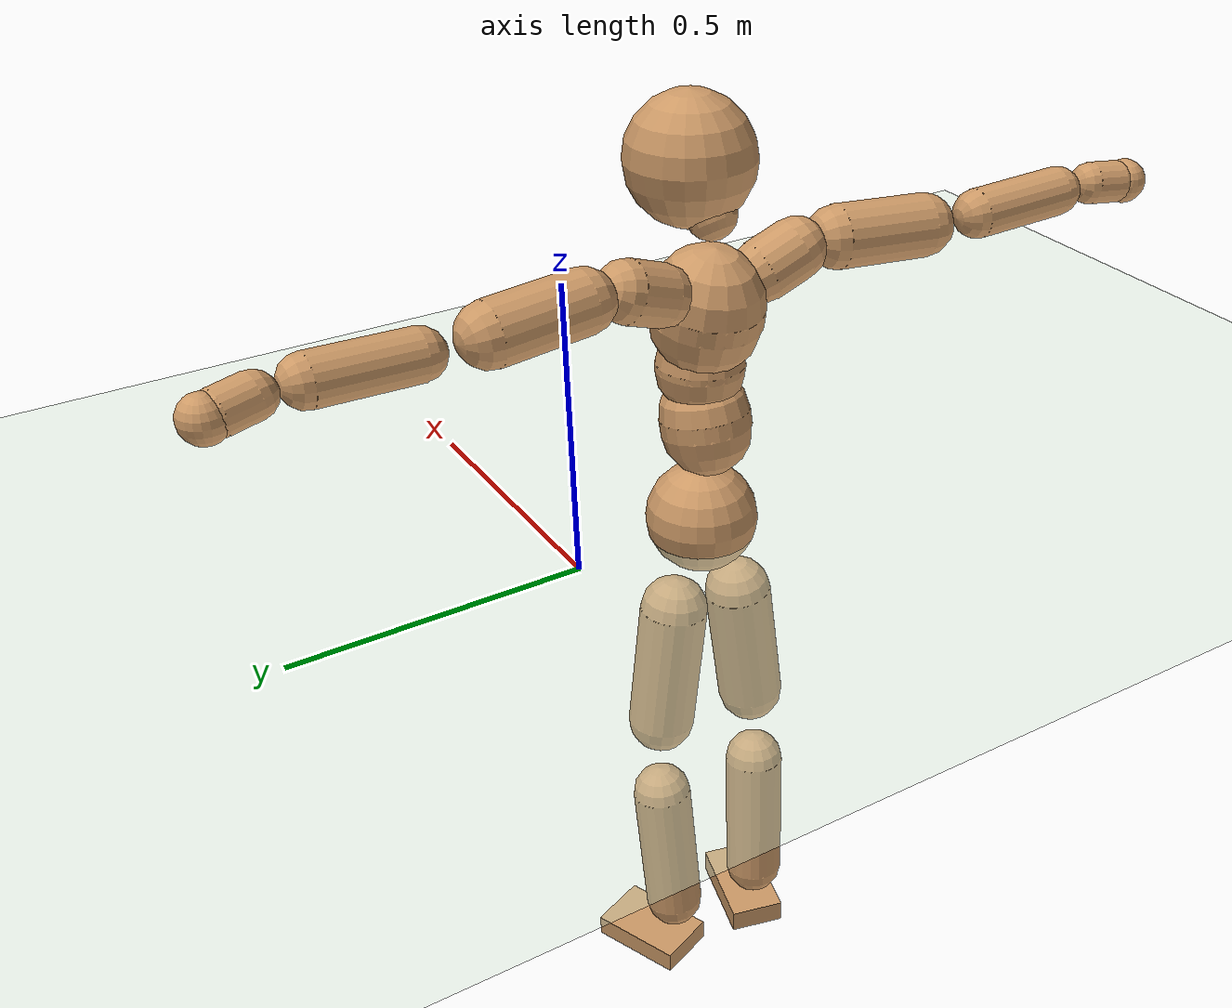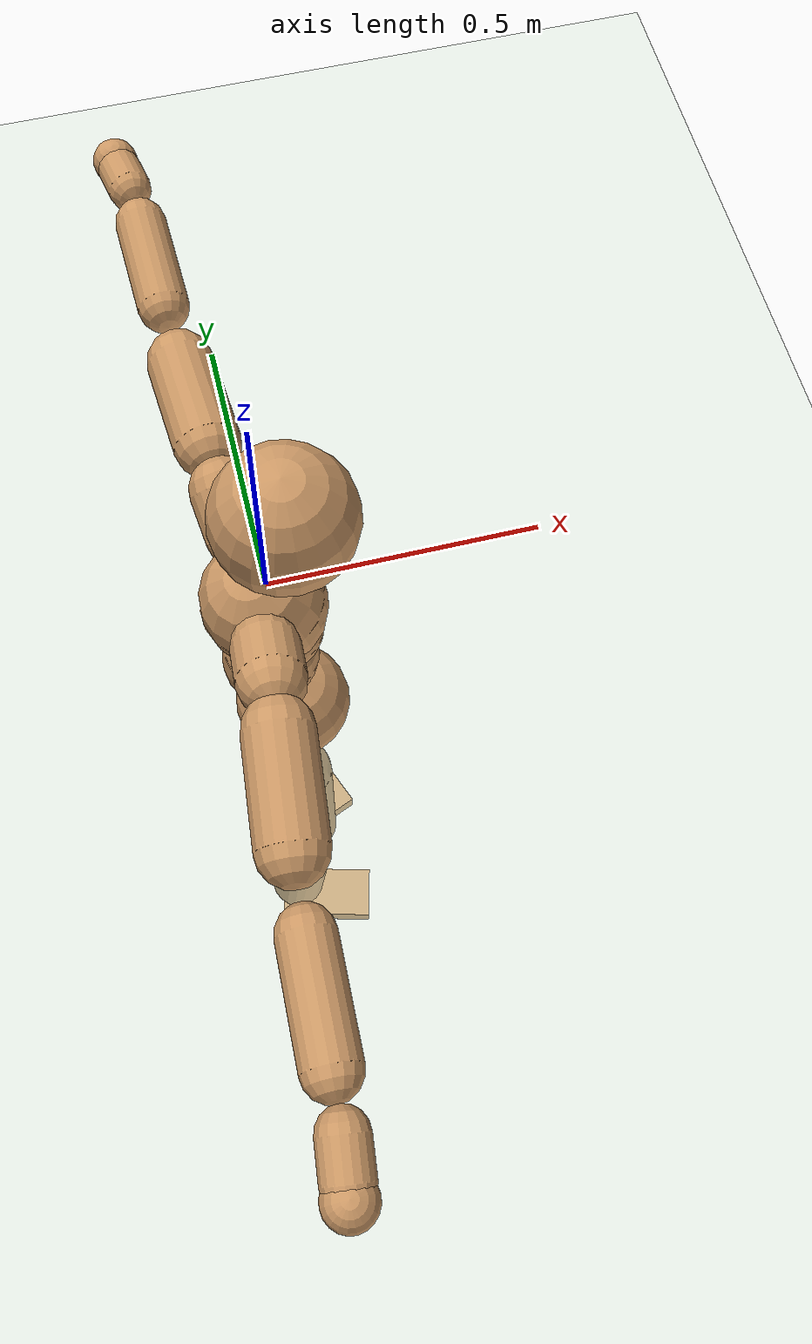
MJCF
<mujoco model="humanoid">
  <compiler coordinate="local"/>
  <default>
    <joint damping="0.0" armature="0.01" stiffness="0.0" limited="true"/>
    <geom conaffinity="1" condim="3" contype="7" margin="0.001" rgba="0.8 0.6 .4 1"/>
  </default>
  <asset>
    <texture type="skybox" builtin="gradient" rgb1=".4 .5 .6" rgb2="0 0 0" width="100" height="100"/>
    <texture builtin="flat" height="1278" mark="cross" markrgb="1 1 1" name="texgeom" random="0.01" rgb1="0.8 0.6 0.4" rgb2="0.8 0.6 0.4" type="cube" width="127"/>
    <texture builtin="checker" height="100" name="texplane" rgb1="0 0 0" rgb2="0.8 0.8 0.8" type="2d" width="100"/>
    <material name="MatPlane" reflectance="0.5" shininess="1" specular="1" texrepeat="60 60" texture="texplane"/>
    <material name="geom" texture="texgeom" texuniform="true"/>
  </asset>
  <worldbody>
    <light cutoff="100" diffuse="1 1 1" dir="-0 0 -1.3" directional="true" exponent="1" pos="0 0 1.3" specular=".1 .1 .1"/>
    <geom conaffinity="1" condim="3" name="floor" pos="0 0 0" rgba="0.8 0.9 0.8 1" size="100 100 .2" type="plane" material="MatPlane"/>
    <body name="Pelvis" pos="-0.0019 -0.2349 0.0288">
      <freejoint name="Pelvis"/>
      <geom type="sphere" contype="1" conaffinity="1" density="500" size="0.0957" pos="0.0000 0.0000 0.0000" name="Pelvis"/>
      <body name="L_Hip" pos="-0.0151 0.0567 -0.0817">
        <joint name="L_Hip_x" type="hinge" pos="0 0 0" axis="1 0 0" stiffness="800" damping="80" armature="0.02" range="-180.0000 180.0000"/>
        <joint name="L_Hip_y" type="hinge" pos="0 0 0" axis="0 1 0" stiffness="800" damping="80" armature="0.02" range="-180.0000 180.0000"/>
        <joint name="L_Hip_z" type="hinge" pos="0 0 0" axis="0 0 1" stiffness="800" damping="80" armature="0.02" range="-180.0000 180.0000"/>
        <geom type="capsule" contype="1" conaffinity="1" density="500" fromto="0.0023 0.0090 -0.0790 0.0092 0.0361 -0.3161" size="0.0587" name="L_Hip"/>
        <body name="L_Knee" pos="0.0115 0.0451 -0.3952">
          <joint name="L_Knee_x" type="hinge" pos="0 0 0" axis="1 0 0" stiffness="800" damping="80" armature="0.02" range="-180.0000 180.0000"/>
          <joint name="L_Knee_y" type="hinge" pos="0 0 0" axis="0 1 0" stiffness="800" damping="80" armature="0.02" range="-180.0000 180.0000"/>
          <joint name="L_Knee_z" type="hinge" pos="0 0 0" axis="0 0 1" stiffness="800" damping="80" armature="0.02" range="-180.0000 180.0000"/>
          <geom type="capsule" contype="1" conaffinity="1" density="500" fromto="-0.0071 -0.0029 -0.0877 -0.0284 -0.0114 -0.3507" size="0.0525" name="L_Knee"/>
          <body name="L_Ankle" pos="-0.0355 -0.0143 -0.4384">
            <joint name="L_Ankle_x" type="hinge" pos="0 0 0" axis="1 0 0" stiffness="800" damping="80" armature="0.02" range="-180.0000 180.0000"/>
            <joint name="L_Ankle_y" type="hinge" pos="0 0 0" axis="0 1 0" stiffness="800" damping="80" armature="0.02" range="-180.0000 180.0000"/>
            <joint name="L_Ankle_z" type="hinge" pos="0 0 0" axis="0 0 1" stiffness="800" damping="80" armature="0.02" range="-180.0000 180.0000"/>
            <geom type="box" contype="1" conaffinity="1" density="500" pos="0.0610 0.0245 -0.0311" size="0.0877 0.0553 0.0208" quat="0.9818 0.0000 0.0000 0.1898" name="L_Ankle"/>
            <body name="L_Toe" pos="0.122 0.049 -0.0622">
              <joint name="L_Toe_x" type="hinge" pos="0 0 0" axis="1 0 0" stiffness="500" damping="50" armature="0.02" range="-180.0000 180.0000"/>
              <joint name="L_Toe_y" type="hinge" pos="0 0 0" axis="0 1 0" stiffness="500" damping="50" armature="0.02" range="-180.0000 180.0000"/>
              <joint name="L_Toe_z" type="hinge" pos="0 0 0" axis="0 0 1" stiffness="500" damping="50" armature="0.02" range="-180.0000 180.0000"/>
              <geom type="box" contype="1" conaffinity="1" density="500" pos="0.0000 0.0000 0.0320" size="0.0011 0.0026 0.0011" quat="0.9810 0.0000 0.0000 0.1939" name="L_Toe"/>
            </body>
          </body>
        </body>
      </body>
      <body name="R_Hip" pos="-0.0103 -0.0575 -0.0909">
        <joint name="R_Hip_x" type="hinge" pos="0 0 0" axis="1 0 0" stiffness="800" damping="80" armature="0.02" range="-180.0000 180.0000"/>
        <joint name="R_Hip_y" type="hinge" pos="0 0 0" axis="0 1 0" stiffness="800" damping="80" armature="0.02" range="-180.0000 180.0000"/>
        <joint name="R_Hip_z" type="hinge" pos="0 0 0" axis="0 0 1" stiffness="800" damping="80" armature="0.02" range="-180.0000 180.0000"/>
        <geom type="capsule" contype="1" conaffinity="1" density="500" fromto="-0.0005 -0.0093 -0.0779 -0.0021 -0.0371 -0.3115" size="0.0582" name="R_Hip"/>
        <body name="R_Knee" pos="-0.0026 -0.0463 -0.3894">
          <joint name="R_Knee_x" type="hinge" pos="0 0 0" axis="1 0 0" stiffness="800" damping="80" armature="0.02" range="-180.0000 180.0000"/>
          <joint name="R_Knee_y" type="hinge" pos="0 0 0" axis="0 1 0" stiffness="800" damping="80" armature="0.02" range="-180.0000 180.0000"/>
          <joint name="R_Knee_z" type="hinge" pos="0 0 0" axis="0 0 1" stiffness="800" damping="80" armature="0.02" range="-180.0000 180.0000"/>
          <geom type="capsule" contype="1" conaffinity="1" density="500" fromto="-0.0068 0.0036 -0.0860 -0.0270 0.0143 -0.3439" size="0.0533" name="R_Knee"/>
          <body name="R_Ankle" pos="-0.0338 0.0178 -0.4299">
            <joint name="R_Ankle_x" type="hinge" pos="0 0 0" axis="1 0 0" stiffness="800" damping="80" armature="0.02" range="-180.0000 180.0000"/>
            <joint name="R_Ankle_y" type="hinge" pos="0 0 0" axis="0 1 0" stiffness="800" damping="80" armature="0.02" range="-180.0000 180.0000"/>
            <joint name="R_Ankle_z" type="hinge" pos="0 0 0" axis="0 0 1" stiffness="800" damping="80" armature="0.02" range="-180.0000 180.0000"/>
            <geom type="box" contype="1" conaffinity="1" density="500" pos="0.0659 -0.0167 -0.0315" size="0.0934 0.0505 0.022" quat="0.9923 0.0000 0.0000 -0.1241" name="R_Ankle"/>
            <body name="R_Toe" pos="0.1318 -0.0335 -0.0629">
              <joint name="R_Toe_x" type="hinge" pos="0 0 0" axis="1 0 0" stiffness="500" damping="50" armature="0.02" range="-180.0000 180.0000"/>
              <joint name="R_Toe_y" type="hinge" pos="0 0 0" axis="0 1 0" stiffness="500" damping="50" armature="0.02" range="-180.0000 180.0000"/>
              <joint name="R_Toe_z" type="hinge" pos="0 0 0" axis="0 0 1" stiffness="500" damping="50" armature="0.02" range="-180.0000 180.0000"/>
              <geom type="box" contype="1" conaffinity="1" density="500" pos="0.0000 0.0000 0.0322" size="0.001 0.0025 0.0011" quat="0.9933 0.0000 0.0000 -0.1153" name="R_Toe"/>
            </body>
          </body>
        </body>
      </body>
      <body name="Torso" pos="-0.0394 0.0048 0.1252">
        <joint name="Torso_x" type="hinge" pos="0 0 0" axis="1 0 0" stiffness="1000" damping="100" armature="0.02" range="-180.0000 180.0000"/>
        <joint name="Torso_y" type="hinge" pos="0 0 0" axis="0 1 0" stiffness="1000" damping="100" armature="0.02" range="-180.0000 180.0000"/>
        <joint name="Torso_z" type="hinge" pos="0 0 0" axis="0 0 1" stiffness="1000" damping="100" armature="0.02" range="-180.0000 180.0000"/>
        <geom type="capsule" contype="1" conaffinity="1" density="500" fromto="0.0157 0.0029 0.0810 0.0105 0.0019 0.0540" size="0.074958" name="Torso"/>
        <body name="Spine" pos="0.0261 0.0049 0.135">
          <joint name="Spine_x" type="hinge" pos="0 0 0" axis="1 0 0" stiffness="1000" damping="100" armature="0.02" range="-180.0000 180.0000"/>
          <joint name="Spine_y" type="hinge" pos="0 0 0" axis="0 1 0" stiffness="1000" damping="100" armature="0.02" range="-180.0000 180.0000"/>
          <joint name="Spine_z" type="hinge" pos="0 0 0" axis="0 0 1" stiffness="1000" damping="100" armature="0.02" range="-180.0000 180.0000"/>
          <geom type="capsule" contype="1" conaffinity="1" density="500" fromto="0.0001 -0.0016 0.0328 0.0000 -0.0011 0.0219" size="0.072819" name="Spine"/>
          <body name="Chest" pos="0.0001 -0.0027 0.0547">
            <joint name="Chest_x" type="hinge" pos="0 0 0" axis="1 0 0" stiffness="1000" damping="100" armature="0.02" range="-180.0000 180.0000"/>
            <joint name="Chest_y" type="hinge" pos="0 0 0" axis="0 1 0" stiffness="1000" damping="100" armature="0.02" range="-180.0000 180.0000"/>
            <joint name="Chest_z" type="hinge" pos="0 0 0" axis="0 0 1" stiffness="1000" damping="100" armature="0.02" range="-180.0000 180.0000"/>
            <geom type="capsule" contype="1" conaffinity="1" density="500" fromto="-0.0163 -0.0045 0.0867 -0.0109 -0.0030 0.0578" size="0.091419" name="Chest"/>
            <body name="Neck" pos="-0.0292 -0.0112 0.2086">
              <joint name="Neck_x" type="hinge" pos="0 0 0" axis="1 0 0" stiffness="500" damping="50" armature="0.02" range="-180.0000 180.0000"/>
              <joint name="Neck_y" type="hinge" pos="0 0 0" axis="0 1 0" stiffness="500" damping="50" armature="0.02" range="-180.0000 180.0000"/>
              <joint name="Neck_z" type="hinge" pos="0 0 0" axis="0 0 1" stiffness="500" damping="50" armature="0.02" range="-180.0000 180.0000"/>
              <geom type="capsule" contype="1" conaffinity="1" density="500" fromto="0.0111 0.0021 0.0182 0.0444 0.0082 0.0729" size="0.041106" name="Neck"/>
              <body name="Head" pos="0.0555 0.0103 0.0911">
                <joint name="Head_x" type="hinge" pos="0 0 0" axis="1 0 0" stiffness="500" damping="50" armature="0.02" range="-180.0000 180.0000"/>
                <joint name="Head_y" type="hinge" pos="0 0 0" axis="0 1 0" stiffness="500" damping="50" armature="0.02" range="-180.0000 180.0000"/>
                <joint name="Head_z" type="hinge" pos="0 0 0" axis="0 0 1" stiffness="500" damping="50" armature="0.02" range="-180.0000 180.0000"/>
                <geom type="sphere" contype="1" conaffinity="1" density="500" size="0.1033" pos="0.0000 0.0000 0.0000" name="Head"/>
              </body>
            </body>
            <body name="L_Thorax" pos="-0.0254 0.0631 0.1129">
              <joint name="L_Thorax_x" type="hinge" pos="0 0 0" axis="1 0 0" stiffness="500" damping="50" armature="0.02" range="-180.0000 180.0000"/>
              <joint name="L_Thorax_y" type="hinge" pos="0 0 0" axis="0 1 0" stiffness="500" damping="50" armature="0.02" range="-180.0000 180.0000"/>
              <joint name="L_Thorax_z" type="hinge" pos="0 0 0" axis="0 0 1" stiffness="500" damping="50" armature="0.02" range="-180.0000 180.0000"/>
              <geom type="capsule" contype="1" conaffinity="1" density="500" fromto="-0.0031 0.0219 0.0083 -0.0124 0.0876 0.0331" size="0.0494" name="L_Thorax"/>
              <body name="L_Shoulder" pos="-0.0155 0.1095 0.0414">
                <joint name="L_Shoulder_x" type="hinge" pos="0 0 0" axis="1 0 0" stiffness="500" damping="50" armature="0.02" range="-720.0000 720.0000"/>
                <joint name="L_Shoulder_y" type="hinge" pos="0 0 0" axis="0 1 0" stiffness="500" damping="50" armature="0.02" range="-720.0000 720.0000"/>
                <joint name="L_Shoulder_z" type="hinge" pos="0 0 0" axis="0 0 1" stiffness="500" damping="50" armature="0.02" range="-720.0000 720.0000"/>
                <geom type="capsule" contype="1" conaffinity="1" density="500" fromto="-0.0041 0.0523 -0.0028 -0.0164 0.2092 -0.0111" size="0.0504" name="L_Shoulder"/>
                <body name="L_Elbow" pos="-0.0205 0.2614 -0.0139">
                  <joint name="L_Elbow_x" type="hinge" pos="0 0 0" axis="1 0 0" stiffness="500" damping="50" armature="0.02" range="-720.0000 720.0000"/>
                  <joint name="L_Elbow_y" type="hinge" pos="0 0 0" axis="0 1 0" stiffness="500" damping="50" armature="0.02" range="-720.0000 720.0000"/>
                  <joint name="L_Elbow_z" type="hinge" pos="0 0 0" axis="0 0 1" stiffness="500" damping="50" armature="0.02" range="-720.0000 720.0000"/>
                  <geom type="capsule" contype="1" conaffinity="1" density="500" fromto="-0.0021 0.0541 0.0024 -0.0085 0.2163 0.0094" size="0.0398" name="L_Elbow"/>
                  <body name="L_Wrist" pos="-0.0106 0.2704 0.0118">
                    <joint name="L_Wrist_x" type="hinge" pos="0 0 0" axis="1 0 0" stiffness="300" damping="30" armature="0.02" range="-180.0000 180.0000"/>
                    <joint name="L_Wrist_y" type="hinge" pos="0 0 0" axis="0 1 0" stiffness="300" damping="30" armature="0.02" range="-180.0000 180.0000"/>
                    <joint name="L_Wrist_z" type="hinge" pos="0 0 0" axis="0 0 1" stiffness="300" damping="30" armature="0.02" range="-180.0000 180.0000"/>
                    <geom type="capsule" contype="1" conaffinity="1" density="500" fromto="-0.0032 0.0175 -0.0021 -0.0128 0.0701 -0.0083" size="0.0342" name="L_Wrist"/>
                    <body name="L_Hand" pos="-0.016 0.0876 -0.0104">
                      <joint name="L_Hand_x" type="hinge" pos="0 0 0" axis="1 0 0" stiffness="300" damping="30" armature="0.02" range="-180.0000 180.0000"/>
                      <joint name="L_Hand_y" type="hinge" pos="0 0 0" axis="0 1 0" stiffness="300" damping="30" armature="0.02" range="-180.0000 180.0000"/>
                      <joint name="L_Hand_z" type="hinge" pos="0 0 0" axis="0 0 1" stiffness="300" damping="30" armature="0.02" range="-180.0000 180.0000"/>
                      <geom type="sphere" contype="1" conaffinity="1" density="500" size="0.0358" pos="0.0000 0.0000 0.0000" name="L_Hand"/>
                    </body>
                  </body>
                </body>
              </body>
            </body>
            <body name="R_Thorax" pos="-0.027 -0.0744 0.112">
              <joint name="R_Thorax_x" type="hinge" pos="0 0 0" axis="1 0 0" stiffness="500" damping="50" armature="0.02" range="-180.0000 180.0000"/>
              <joint name="R_Thorax_y" type="hinge" pos="0 0 0" axis="0 1 0" stiffness="500" damping="50" armature="0.02" range="-180.0000 180.0000"/>
              <joint name="R_Thorax_z" type="hinge" pos="0 0 0" axis="0 0 1" stiffness="500" damping="50" armature="0.02" range="-180.0000 180.0000"/>
              <geom type="capsule" contype="1" conaffinity="1" density="500" fromto="-0.0011 -0.0204 0.0083 -0.0044 -0.0817 0.0333" size="0.0501" name="R_Thorax"/>
              <body name="R_Shoulder" pos="-0.0055 -0.1022 0.0416">
                <joint name="R_Shoulder_x" type="hinge" pos="0 0 0" axis="1 0 0" stiffness="500" damping="50" armature="0.02" range="-720.0000 720.0000"/>
                <joint name="R_Shoulder_y" type="hinge" pos="0 0 0" axis="0 1 0" stiffness="500" damping="50" armature="0.02" range="-720.0000 720.0000"/>
                <joint name="R_Shoulder_z" type="hinge" pos="0 0 0" axis="0 0 1" stiffness="500" damping="50" armature="0.02" range="-720.0000 720.0000"/>
                <geom type="capsule" contype="1" conaffinity="1" density="500" fromto="-0.0053 -0.0532 -0.0029 -0.0211 -0.2126 -0.0115" size="0.0516" name="R_Shoulder"/>
                <body name="R_Elbow" pos="-0.0263 -0.2658 -0.0143">
                  <joint name="R_Elbow_x" type="hinge" pos="0 0 0" axis="1 0 0" stiffness="500" damping="50" armature="0.02" range="-720.0000 720.0000"/>
                  <joint name="R_Elbow_y" type="hinge" pos="0 0 0" axis="0 1 0" stiffness="500" damping="50" armature="0.02" range="-720.0000 720.0000"/>
                  <joint name="R_Elbow_z" type="hinge" pos="0 0 0" axis="0 0 1" stiffness="500" damping="50" armature="0.02" range="-720.0000 720.0000"/>
                  <geom type="capsule" contype="1" conaffinity="1" density="500" fromto="-0.0017 -0.0556 0.0024 -0.0070 -0.2225 0.0098" size="0.0408" name="R_Elbow"/>
                  <body name="R_Wrist" pos="-0.0087 -0.2781 0.0122">
                    <joint name="R_Wrist_x" type="hinge" pos="0 0 0" axis="1 0 0" stiffness="300" damping="30" armature="0.02" range="-180.0000 180.0000"/>
                    <joint name="R_Wrist_y" type="hinge" pos="0 0 0" axis="0 1 0" stiffness="300" damping="30" armature="0.02" range="-180.0000 180.0000"/>
                    <joint name="R_Wrist_z" type="hinge" pos="0 0 0" axis="0 0 1" stiffness="300" damping="30" armature="0.02" range="-180.0000 180.0000"/>
                    <geom type="capsule" contype="1" conaffinity="1" density="500" fromto="-0.0021 -0.0181 -0.0017 -0.0084 -0.0724 -0.0069" size="0.0352" name="R_Wrist"/>
                    <body name="R_Hand" pos="-0.0105 -0.0905 -0.0087">
                      <joint name="R_Hand_x" type="hinge" pos="0 0 0" axis="1 0 0" stiffness="300" damping="30" armature="0.02" range="-180.0000 180.0000"/>
                      <joint name="R_Hand_y" type="hinge" pos="0 0 0" axis="0 1 0" stiffness="300" damping="30" armature="0.02" range="-180.0000 180.0000"/>
                      <joint name="R_Hand_z" type="hinge" pos="0 0 0" axis="0 0 1" stiffness="300" damping="30" armature="0.02" range="-180.0000 180.0000"/>
                      <geom type="sphere" contype="1" conaffinity="1" density="500" size="0.0368" pos="0.0000 0.0000 0.0000" name="R_Hand"/>
                    </body>
                  </body>
                </body>
              </body>
            </body>
          </body>
        </body>
      </body>
    </body>
  </worldbody>
  <actuator>
    <motor name="L_Hip_x" joint="L_Hip_x" gear="500"/>
    <motor name="L_Hip_y" joint="L_Hip_y" gear="500"/>
    <motor name="L_Hip_z" joint="L_Hip_z" gear="500"/>
    <motor name="L_Knee_x" joint="L_Knee_x" gear="500"/>
    <motor name="L_Knee_y" joint="L_Knee_y" gear="500"/>
    <motor name="L_Knee_z" joint="L_Knee_z" gear="500"/>
    <motor name="L_Ankle_x" joint="L_Ankle_x" gear="500"/>
    <motor name="L_Ankle_y" joint="L_Ankle_y" gear="500"/>
    <motor name="L_Ankle_z" joint="L_Ankle_z" gear="500"/>
    <motor name="L_Toe_x" joint="L_Toe_x" gear="500"/>
    <motor name="L_Toe_y" joint="L_Toe_y" gear="500"/>
    <motor name="L_Toe_z" joint="L_Toe_z" gear="500"/>
    <motor name="R_Hip_x" joint="R_Hip_x" gear="500"/>
    <motor name="R_Hip_y" joint="R_Hip_y" gear="500"/>
    <motor name="R_Hip_z" joint="R_Hip_z" gear="500"/>
    <motor name="R_Knee_x" joint="R_Knee_x" gear="500"/>
    <motor name="R_Knee_y" joint="R_Knee_y" gear="500"/>
    <motor name="R_Knee_z" joint="R_Knee_z" gear="500"/>
    <motor name="R_Ankle_x" joint="R_Ankle_x" gear="500"/>
    <motor name="R_Ankle_y" joint="R_Ankle_y" gear="500"/>
    <motor name="R_Ankle_z" joint="R_Ankle_z" gear="500"/>
    <motor name="R_Toe_x" joint="R_Toe_x" gear="500"/>
    <motor name="R_Toe_y" joint="R_Toe_y" gear="500"/>
    <motor name="R_Toe_z" joint="R_Toe_z" gear="500"/>
    <motor name="Torso_x" joint="Torso_x" gear="500"/>
    <motor name="Torso_y" joint="Torso_y" gear="500"/>
    <motor name="Torso_z" joint="Torso_z" gear="500"/>
    <motor name="Spine_x" joint="Spine_x" gear="500"/>
    <motor name="Spine_y" joint="Spine_y" gear="500"/>
    <motor name="Spine_z" joint="Spine_z" gear="500"/>
    <motor name="Chest_x" joint="Chest_x" gear="500"/>
    <motor name="Chest_y" joint="Chest_y" gear="500"/>
    <motor name="Chest_z" joint="Chest_z" gear="500"/>
    <motor name="Neck_x" joint="Neck_x" gear="500"/>
    <motor name="Neck_y" joint="Neck_y" gear="500"/>
    <motor name="Neck_z" joint="Neck_z" gear="500"/>
    <motor name="Head_x" joint="Head_x" gear="500"/>
    <motor name="Head_y" joint="Head_y" gear="500"/>
    <motor name="Head_z" joint="Head_z" gear="500"/>
    <motor name="L_Thorax_x" joint="L_Thorax_x" gear="500"/>
    <motor name="L_Thorax_y" joint="L_Thorax_y" gear="500"/>
    <motor name="L_Thorax_z" joint="L_Thorax_z" gear="500"/>
    <motor name="L_Shoulder_x" joint="L_Shoulder_x" gear="500"/>
    <motor name="L_Shoulder_y" joint="L_Shoulder_y" gear="500"/>
    <motor name="L_Shoulder_z" joint="L_Shoulder_z" gear="500"/>
    <motor name="L_Elbow_x" joint="L_Elbow_x" gear="500"/>
    <motor name="L_Elbow_y" joint="L_Elbow_y" gear="500"/>
    <motor name="L_Elbow_z" joint="L_Elbow_z" gear="500"/>
    <motor name="L_Wrist_x" joint="L_Wrist_x" gear="500"/>
    <motor name="L_Wrist_y" joint="L_Wrist_y" gear="500"/>
    <motor name="L_Wrist_z" joint="L_Wrist_z" gear="500"/>
    <motor name="L_Hand_x" joint="L_Hand_x" gear="500"/>
    <motor name="L_Hand_y" joint="L_Hand_y" gear="500"/>
    <motor name="L_Hand_z" joint="L_Hand_z" gear="500"/>
    <motor name="R_Thorax_x" joint="R_Thorax_x" gear="500"/>
    <motor name="R_Thorax_y" joint="R_Thorax_y" gear="500"/>
    <motor name="R_Thorax_z" joint="R_Thorax_z" gear="500"/>
    <motor name="R_Shoulder_x" joint="R_Shoulder_x" gear="500"/>
    <motor name="R_Shoulder_y" joint="R_Shoulder_y" gear="500"/>
    <motor name="R_Shoulder_z" joint="R_Shoulder_z" gear="500"/>
    <motor name="R_Elbow_x" joint="R_Elbow_x" gear="500"/>
    <motor name="R_Elbow_y" joint="R_Elbow_y" gear="500"/>
    <motor name="R_Elbow_z" joint="R_Elbow_z" gear="500"/>
    <motor name="R_Wrist_x" joint="R_Wrist_x" gear="500"/>
    <motor name="R_Wrist_y" joint="R_Wrist_y" gear="500"/>
    <motor name="R_Wrist_z" joint="R_Wrist_z" gear="500"/>
    <motor name="R_Hand_x" joint="R_Hand_x" gear="500"/>
    <motor name="R_Hand_y" joint="R_Hand_y" gear="500"/>
    <motor name="R_Hand_z" joint="R_Hand_z" gear="500"/>
  </actuator>
  <contact>
    <exclude body1="Torso" body2="Chest"/>
    <exclude body1="Head" body2="Chest"/>
    <exclude body1="R_Knee" body2="R_Toe"/>
    <exclude body1="R_Knee" body2="L_Ankle"/>
    <exclude body1="R_Knee" body2="L_Toe"/>
    <exclude body1="L_Knee" body2="L_Toe"/>
    <exclude body1="L_Knee" body2="R_Ankle"/>
    <exclude body1="L_Knee" body2="R_Toe"/>
    <exclude body1="L_Shoulder" body2="Chest"/>
    <exclude body1="R_Shoulder" body2="Chest"/>
  </contact>
  <sensor/>
  <size njmax="700" nconmax="700"/>
</mujoco>
